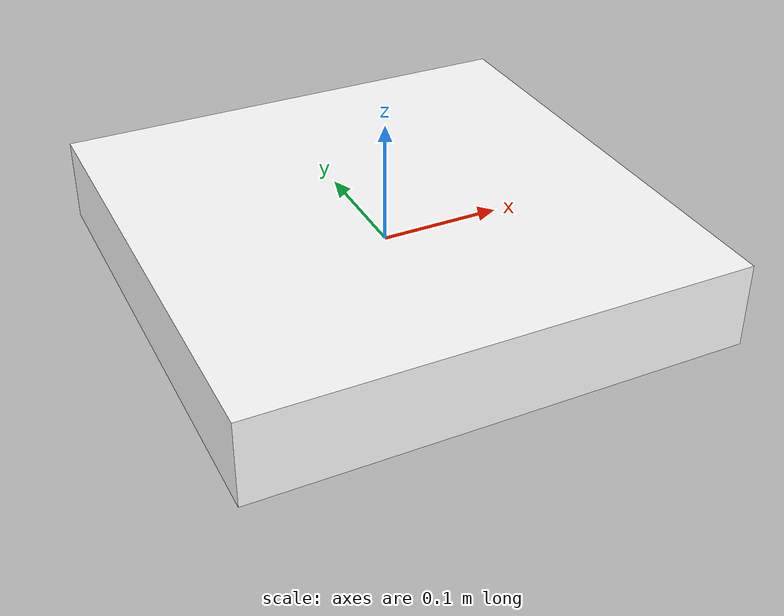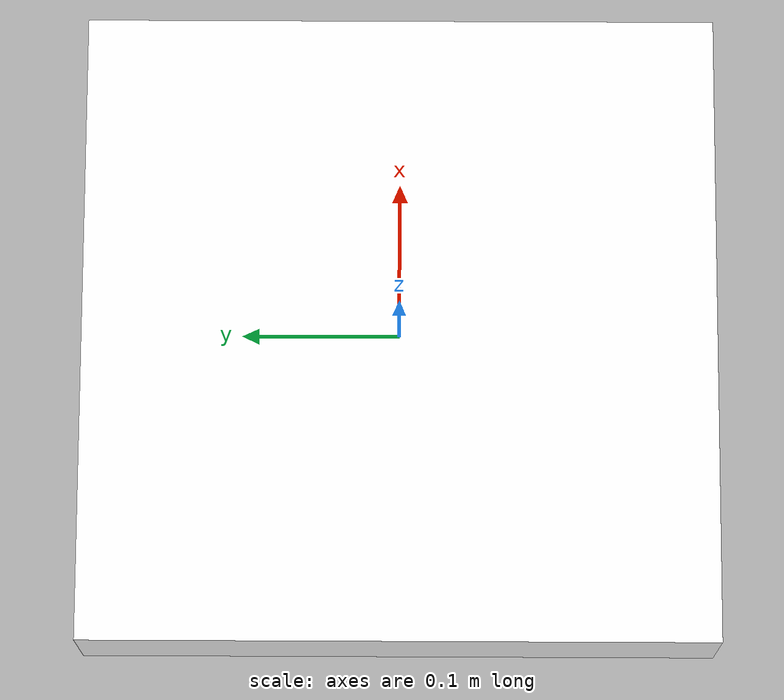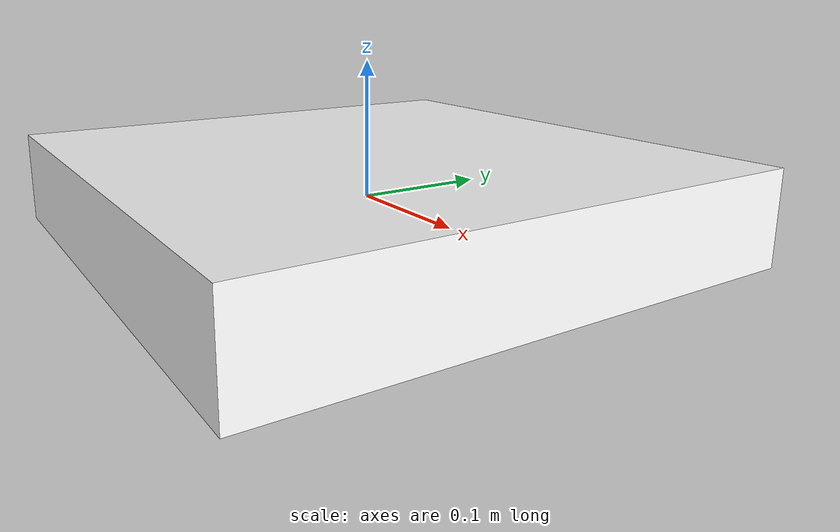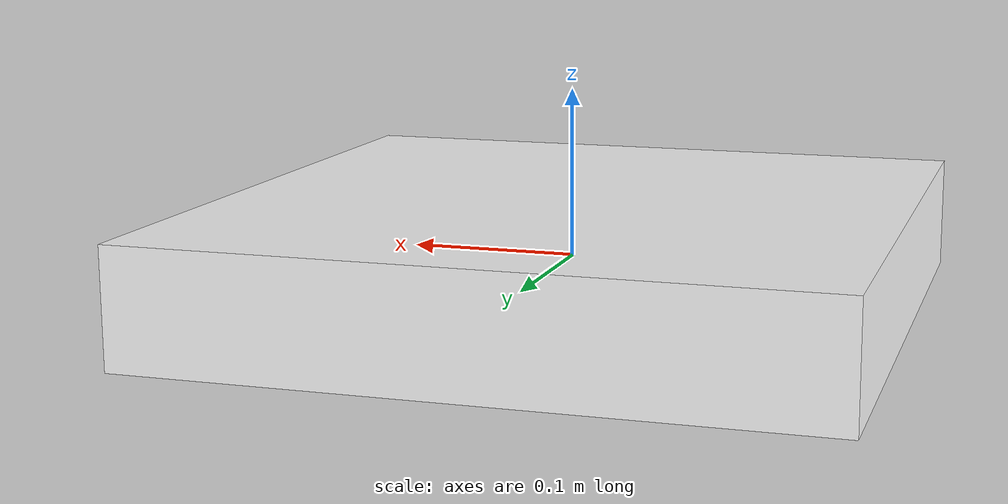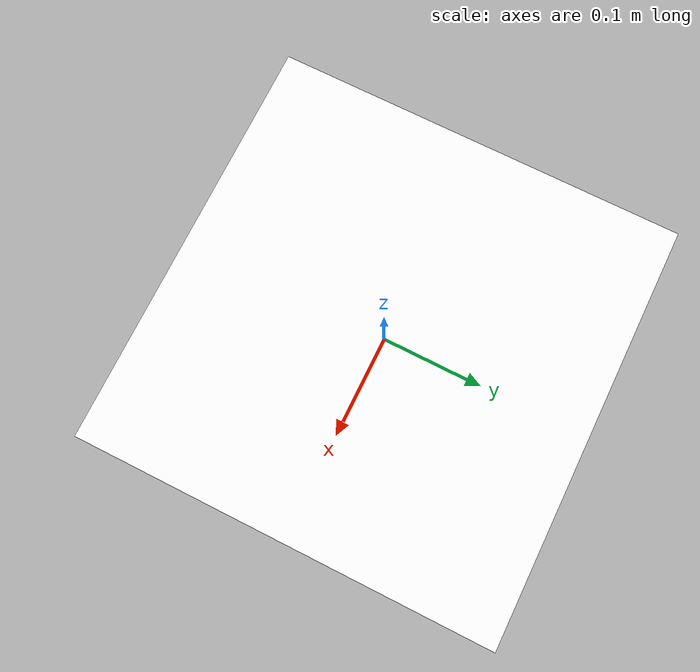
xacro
<?xml version="1.0"?>
<robot name="drone" xmlns:xacro="http://ros.org/wiki/xacro">

  <xacro:property name="base_width" value="0.4"/>
  <xacro:property name="base_length" value="0.4"/>
  <xacro:property name="base_height" value="0.07"/>

  <!-- Robot Base -->
  <link name="base_link">
    <visual>
      <geometry>
        <box size="${base_length} ${base_width} ${base_height}"/>
      </geometry>
      <material name="White">
        <color rgba="1.0 1.0 1.0 1.0"/>
      </material>
    </visual>
  </link>

  <link name="base_footprint"/>

  <joint name="base_joint" type="fixed">
    <parent link="base_link"/>
    <child link="base_footprint"/>
    <origin xyz="0.0 0.0 0.0" rpy="0 0 0"/>
  </joint>

</robot>
